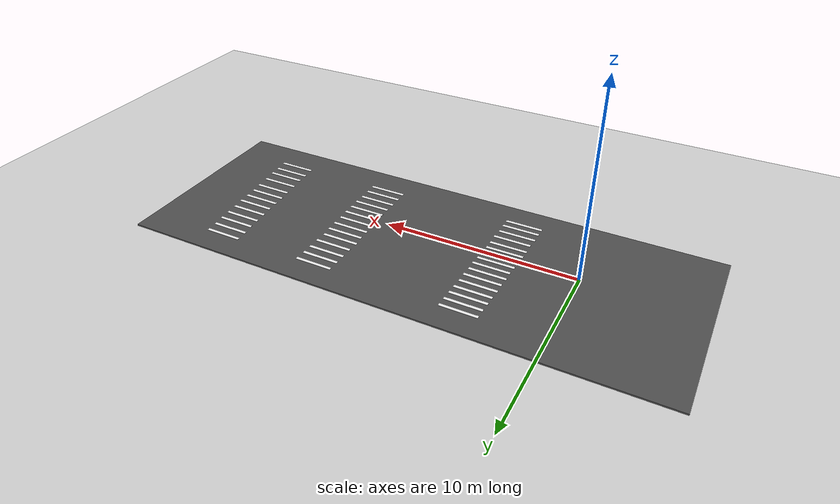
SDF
<sdf version="1.7">
 <world name="default">
  <model name="ground_plane">
   <static>1</static>
   <link name="link">
    <collision name="collision">
     <geometry><plane><normal>0 0 1</normal><size>100 100</size></plane></geometry>
     <surface><friction><ode><mu>100</mu><mu2>50</mu2></ode></friction></surface>
    </collision>
    <visual name="visual">
     <cast_shadows>0</cast_shadows>
     <geometry><plane><normal>0 0 1</normal><size>100 100</size></plane></geometry>
     <material>
      <script><uri>file://media/materials/scripts/gazebo.material</uri><name>Gazebo/Grey</name></script>
     </material>
    </visual>
   </link>
  </model>
  <light name="sun" type="directional">
   <pose>0 0 10 0 -0 0</pose>
   <diffuse>0.8 0.8 0.8 1</diffuse>
   <specular>0.2 0.2 0.2 1</specular>
   <attenuation>
    <range>1000</range>
    <constant>0.9</constant>
    <linear>0.01</linear>
    <quadratic>0.001</quadratic>
   </attenuation>
   <direction>-0.5 0.1 -0.9</direction>
   <spot><inner_angle>0</inner_angle><outer_angle>0</outer_angle><falloff>0</falloff></spot>
  </light>
  <scene><shadows>0</shadows><ambient>0.4 0.4 0.4 1</ambient><background>0.7 0.7 0.7 1</background></scene>
  <physics type="ode">
   <real_time_update_rate>1000</real_time_update_rate>
   <max_step_size>0.001</max_step_size>
   <real_time_factor>1</real_time_factor>
   <ode>
    <solver>
     <type>quick</type>
     <iters>150</iters>
     <precon_iters>0</precon_iters>
     <sor>1.4</sor>
     <use_dynamic_moi_rescaling>1</use_dynamic_moi_rescaling>
    </solver>
    <constraints>
     <cfm>1e-05</cfm>
     <erp>0.2</erp>
     <contact_max_correcting_vel>2000</contact_max_correcting_vel>
     <contact_surface_layer>0.01</contact_surface_layer>
    </constraints>
   </ode>
  </physics>
  <gravity>0 0 -9.8</gravity>
  <magnetic_field>6e-06 2.3e-05 -4.2e-05</magnetic_field>
  <atmosphere type="adiabatic"/>
  <audio><device>default</device></audio>
  <spherical_coordinates>
   <surface_model>EARTH_WGS84</surface_model>
   <latitude_deg>0</latitude_deg>
   <longitude_deg>0</longitude_deg>
   <elevation>0</elevation>
   <heading_deg>0</heading_deg>
  </spherical_coordinates>
  <model name="asphalt_plane">
   <static>1</static>
   <link name="link">
    <collision name="collision"><geometry><box><size>27.3358 10.1635 0.1</size></box></geometry></collision>
    <visual name="visual">
     <cast_shadows>0</cast_shadows>
     <geometry><box><size>27.3358 10.1635 0.1</size></box></geometry>
     <material>
      <script><name>Gazebo/DarkGrey</name><uri>file://media/materials/scripts/gazebo.material</uri></script>
     </material>
    </visual>
   </link>
   <pose>7.64385 0.79161 0 0 -0 0</pose>
  </model>
  <model name="unit_box_clone_3_clone">
   <static>1</static>
   <pose>11.6103 -2.77848 0.053193 0 -0 0.000169</pose>
   <link name="link">
    <inertial>
     <mass>1</mass>
     <inertia>
      <ixx>0.166667</ixx>
      <ixy>0</ixy>
      <ixz>0</ixz>
      <iyy>0.166667</iyy>
      <iyz>0</iyz>
      <izz>0.166667</izz>
     </inertia>
    </inertial>
    <collision name="collision"><geometry><box><size>1.90796 0.165074 0.006387</size></box></geometry></collision>
    <visual name="visual">
     <geometry><box><size>1.90796 0.165074 0.006387</size></box></geometry>
     <material>
      <script><name>Gazebo/White</name><uri>file://media/materials/scripts/gazebo.material</uri></script>
     </material>
    </visual>
   </link>
  </model>
  <model name="unit_box_clone_3_clone_0">
   <static>1</static>
   <pose>11.5996 -2.2243 0.053193 0 -0 0.000169</pose>
   <link name="link">
    <inertial>
     <mass>1</mass>
     <inertia>
      <ixx>0.166667</ixx>
      <ixy>0</ixy>
      <ixz>0</ixz>
      <iyy>0.166667</iyy>
      <iyz>0</iyz>
      <izz>0.166667</izz>
     </inertia>
    </inertial>
    <collision name="collision"><geometry><box><size>1.90796 0.165074 0.006387</size></box></geometry></collision>
    <visual name="visual">
     <geometry><box><size>1.90796 0.165074 0.006387</size></box></geometry>
     <material>
      <script><name>Gazebo/White</name><uri>file://media/materials/scripts/gazebo.material</uri></script>
     </material>
    </visual>
   </link>
  </model>
  <model name="unit_box_clone_3_clone_1">
   <static>1</static>
   <pose>11.5931 -1.6331 0.053193 0 -0 0.000169</pose>
   <link name="link">
    <inertial>
     <mass>1</mass>
     <inertia>
      <ixx>0.166667</ixx>
      <ixy>0</ixy>
      <ixz>0</ixz>
      <iyy>0.166667</iyy>
      <iyz>0</iyz>
      <izz>0.166667</izz>
     </inertia>
    </inertial>
    <collision name="collision"><geometry><box><size>1.90796 0.165074 0.006387</size></box></geometry></collision>
    <visual name="visual">
     <geometry><box><size>1.90796 0.165074 0.006387</size></box></geometry>
     <material>
      <script><name>Gazebo/White</name><uri>file://media/materials/scripts/gazebo.material</uri></script>
     </material>
    </visual>
   </link>
  </model>
  <model name="unit_box_clone_3_clone_2">
   <static>1</static>
   <pose>11.6174 -1.07884 0.053193 0 -0 0.000169</pose>
   <link name="link">
    <inertial>
     <mass>1</mass>
     <inertia>
      <ixx>0.166667</ixx>
      <ixy>0</ixy>
      <ixz>0</ixz>
      <iyy>0.166667</iyy>
      <iyz>0</iyz>
      <izz>0.166667</izz>
     </inertia>
    </inertial>
    <collision name="collision"><geometry><box><size>1.90796 0.165074 0.006387</size></box></geometry></collision>
    <visual name="visual">
     <geometry><box><size>1.90796 0.165074 0.006387</size></box></geometry>
     <material>
      <script><name>Gazebo/White</name><uri>file://media/materials/scripts/gazebo.material</uri></script>
     </material>
    </visual>
   </link>
  </model>
  <model name="unit_box_clone_3_clone_3">
   <static>1</static>
   <pose>11.605 -0.530038 0.053193 0 -0 0.000169</pose>
   <link name="link">
    <inertial>
     <mass>1</mass>
     <inertia>
      <ixx>0.166667</ixx>
      <ixy>0</ixy>
      <ixz>0</ixz>
      <iyy>0.166667</iyy>
      <iyz>0</iyz>
      <izz>0.166667</izz>
     </inertia>
    </inertial>
    <collision name="collision"><geometry><box><size>1.90796 0.165074 0.006387</size></box></geometry></collision>
    <visual name="visual">
     <geometry><box><size>1.90796 0.165074 0.006387</size></box></geometry>
     <material>
      <script><name>Gazebo/White</name><uri>file://media/materials/scripts/gazebo.material</uri></script>
     </material>
    </visual>
   </link>
  </model>
  <model name="unit_box_clone_3_clone_4">
   <static>1</static>
   <pose>11.6043 0.019375 0.053193 0 -0 0.000169</pose>
   <link name="link">
    <inertial>
     <mass>1</mass>
     <inertia>
      <ixx>0.166667</ixx>
      <ixy>0</ixy>
      <ixz>0</ixz>
      <iyy>0.166667</iyy>
      <iyz>0</iyz>
      <izz>0.166667</izz>
     </inertia>
    </inertial>
    <collision name="collision"><geometry><box><size>1.90796 0.165074 0.006387</size></box></geometry></collision>
    <visual name="visual">
     <geometry><box><size>1.90796 0.165074 0.006387</size></box></geometry>
     <material>
      <script><name>Gazebo/White</name><uri>file://media/materials/scripts/gazebo.material</uri></script>
     </material>
    </visual>
   </link>
  </model>
  <model name="unit_box_clone_3_clone_4_clone">
   <static>1</static>
   <pose>11.5465 0.589654 0.053193 0 -0 0.000169</pose>
   <link name="link">
    <inertial>
     <mass>1</mass>
     <inertia>
      <ixx>0.166667</ixx>
      <ixy>0</ixy>
      <ixz>0</ixz>
      <iyy>0.166667</iyy>
      <iyz>0</iyz>
      <izz>0.166667</izz>
     </inertia>
    </inertial>
    <collision name="collision"><geometry><box><size>1.90796 0.165074 0.006387</size></box></geometry></collision>
    <visual name="visual">
     <geometry><box><size>1.90796 0.165074 0.006387</size></box></geometry>
     <material>
      <script><name>Gazebo/White</name><uri>file://media/materials/scripts/gazebo.material</uri></script>
     </material>
    </visual>
   </link>
  </model>
  <model name="unit_box_clone_3_clone_4_clone_0">
   <static>1</static>
   <pose>11.5365 1.16834 0.053193 0 -0 0.000169</pose>
   <link name="link">
    <inertial>
     <mass>1</mass>
     <inertia>
      <ixx>0.166667</ixx>
      <ixy>0</ixy>
      <ixz>0</ixz>
      <iyy>0.166667</iyy>
      <iyz>0</iyz>
      <izz>0.166667</izz>
     </inertia>
    </inertial>
    <collision name="collision"><geometry><box><size>1.90796 0.165074 0.006387</size></box></geometry></collision>
    <visual name="visual">
     <geometry><box><size>1.90796 0.165074 0.006387</size></box></geometry>
     <material>
      <script><name>Gazebo/White</name><uri>file://media/materials/scripts/gazebo.material</uri></script>
     </material>
    </visual>
   </link>
  </model>
  <model name="unit_box_clone_3_clone_4_clone_1">
   <static>1</static>
   <pose>11.5239 1.72543 0.053193 0 -0 0.000169</pose>
   <link name="link">
    <inertial>
     <mass>1</mass>
     <inertia>
      <ixx>0.166667</ixx>
      <ixy>0</ixy>
      <ixz>0</ixz>
      <iyy>0.166667</iyy>
      <iyz>0</iyz>
      <izz>0.166667</izz>
     </inertia>
    </inertial>
    <collision name="collision"><geometry><box><size>1.90796 0.165074 0.006387</size></box></geometry></collision>
    <visual name="visual">
     <geometry><box><size>1.90796 0.165074 0.006387</size></box></geometry>
     <material>
      <script><name>Gazebo/White</name><uri>file://media/materials/scripts/gazebo.material</uri></script>
     </material>
    </visual>
   </link>
  </model>
  <model name="unit_box_clone_3_clone_4_clone_2">
   <static>1</static>
   <pose>11.4489 2.26766 0.053193 0 -0 0.000169</pose>
   <link name="link">
    <inertial>
     <mass>1</mass>
     <inertia>
      <ixx>0.166667</ixx>
      <ixy>0</ixy>
      <ixz>0</ixz>
      <iyy>0.166667</iyy>
      <iyz>0</iyz>
      <izz>0.166667</izz>
     </inertia>
    </inertial>
    <collision name="collision"><geometry><box><size>1.90796 0.165074 0.006387</size></box></geometry></collision>
    <visual name="visual">
     <geometry><box><size>1.90796 0.165074 0.006387</size></box></geometry>
     <material>
      <script><name>Gazebo/White</name><uri>file://media/materials/scripts/gazebo.material</uri></script>
     </material>
    </visual>
   </link>
  </model>
  <model name="unit_box_clone_3_clone_4_clone_3">
   <static>1</static>
   <pose>11.4869 2.84722 0.053193 0 -0 0.000169</pose>
   <link name="link">
    <inertial>
     <mass>1</mass>
     <inertia>
      <ixx>0.166667</ixx>
      <ixy>0</ixy>
      <ixz>0</ixz>
      <iyy>0.166667</iyy>
      <iyz>0</iyz>
      <izz>0.166667</izz>
     </inertia>
    </inertial>
    <collision name="collision"><geometry><box><size>1.90796 0.165074 0.006387</size></box></geometry></collision>
    <visual name="visual">
     <geometry><box><size>1.90796 0.165074 0.006387</size></box></geometry>
     <material>
      <script><name>Gazebo/White</name><uri>file://media/materials/scripts/gazebo.material</uri></script>
     </material>
    </visual>
   </link>
  </model>
  <model name="unit_box_clone_3_clone_4_clone_4">
   <static>1</static>
   <pose>11.4888 3.4333 0.053193 0 -0 0.000169</pose>
   <link name="link">
    <inertial>
     <mass>1</mass>
     <inertia>
      <ixx>0.166667</ixx>
      <ixy>0</ixy>
      <ixz>0</ixz>
      <iyy>0.166667</iyy>
      <iyz>0</iyz>
      <izz>0.166667</izz>
     </inertia>
    </inertial>
    <collision name="collision"><geometry><box><size>1.90796 0.165074 0.006387</size></box></geometry></collision>
    <visual name="visual">
     <geometry><box><size>1.90796 0.165074 0.006387</size></box></geometry>
     <material>
      <script><name>Gazebo/White</name><uri>file://media/materials/scripts/gazebo.material</uri></script>
     </material>
    </visual>
   </link>
  </model>
  <model name="unit_box_clone_3_clone_4_clone_5">
   <static>1</static>
   <pose>11.4849 3.97323 0.053193 0 -0 0.000169</pose>
   <link name="link">
    <inertial>
     <mass>1</mass>
     <inertia>
      <ixx>0.166667</ixx>
      <ixy>0</ixy>
      <ixz>0</ixz>
      <iyy>0.166667</iyy>
      <iyz>0</iyz>
      <izz>0.166667</izz>
     </inertia>
    </inertial>
    <collision name="collision"><geometry><box><size>1.90796 0.165074 0.006387</size></box></geometry></collision>
    <visual name="visual">
     <geometry><box><size>1.90796 0.165074 0.006387</size></box></geometry>
     <material>
      <script><name>Gazebo/White</name><uri>file://media/materials/scripts/gazebo.material</uri></script>
     </material>
    </visual>
   </link>
  </model>
  <model name="unit_box_clone_3_clone_4_clone_6">
   <static>1</static>
   <pose>11.5065 4.52435 0.053193 0 -0 0.000169</pose>
   <link name="link">
    <inertial>
     <mass>1</mass>
     <inertia>
      <ixx>0.166667</ixx>
      <ixy>0</ixy>
      <ixz>0</ixz>
      <iyy>0.166667</iyy>
      <iyz>0</iyz>
      <izz>0.166667</izz>
     </inertia>
    </inertial>
    <collision name="collision"><geometry><box><size>1.90796 0.165074 0.006387</size></box></geometry></collision>
    <visual name="visual">
     <geometry><box><size>1.90796 0.165074 0.006387</size></box></geometry>
     <material>
      <script><name>Gazebo/White</name><uri>file://media/materials/scripts/gazebo.material</uri></script>
     </material>
    </visual>
   </link>
  </model>
  <model name="unit_box_clone_3_clone_4_clone_7">
   <static>1</static>
   <pose>4 4.498 0.053193 0 -0 0.000169</pose>
   <link name="link">
    <inertial>
     <mass>1</mass>
     <inertia>
      <ixx>0.166667</ixx>
      <ixy>0</ixy>
      <ixz>0</ixz>
      <iyy>0.166667</iyy>
      <iyz>0</iyz>
      <izz>0.166667</izz>
     </inertia>
    </inertial>
    <collision name="collision"><geometry><box><size>1.90796 0.165074 0.006387</size></box></geometry></collision>
    <visual name="visual">
     <geometry><box><size>1.90796 0.165074 0.006387</size></box></geometry>
     <material>
      <script><name>Gazebo/White</name><uri>file://media/materials/scripts/gazebo.material</uri></script>
     </material>
    </visual>
   </link>
  </model>
  <model name="unit_box_clone_3_clone_4_clone_8">
   <static>1</static>
   <pose>3.99733 4.0038 0.053193 0 -0 0.000169</pose>
   <link name="link">
    <inertial>
     <mass>1</mass>
     <inertia>
      <ixx>0.166667</ixx>
      <ixy>0</ixy>
      <ixz>0</ixz>
      <iyy>0.166667</iyy>
      <iyz>0</iyz>
      <izz>0.166667</izz>
     </inertia>
    </inertial>
    <collision name="collision"><geometry><box><size>1.90796 0.165074 0.006387</size></box></geometry></collision>
    <visual name="visual">
     <geometry><box><size>1.90796 0.165074 0.006387</size></box></geometry>
     <material>
      <script><name>Gazebo/White</name><uri>file://media/materials/scripts/gazebo.material</uri></script>
     </material>
    </visual>
   </link>
  </model>
  <model name="unit_box_clone_3_clone_4_clone_9">
   <static>1</static>
   <pose>3.97062 3.50716 0.053193 0 -0 0.000169</pose>
   <link name="link">
    <inertial>
     <mass>1</mass>
     <inertia>
      <ixx>0.166667</ixx>
      <ixy>0</ixy>
      <ixz>0</ixz>
      <iyy>0.166667</iyy>
      <iyz>0</iyz>
      <izz>0.166667</izz>
     </inertia>
    </inertial>
    <collision name="collision"><geometry><box><size>1.90796 0.165074 0.006387</size></box></geometry></collision>
    <visual name="visual">
     <geometry><box><size>1.90796 0.165074 0.006387</size></box></geometry>
     <material>
      <script><name>Gazebo/White</name><uri>file://media/materials/scripts/gazebo.material</uri></script>
     </material>
    </visual>
   </link>
  </model>
  <model name="unit_box_clone_3_clone_4_clone_10">
   <static>1</static>
   <pose>3.9586 3.03451 0.053193 0 -0 0.000169</pose>
   <link name="link">
    <inertial>
     <mass>1</mass>
     <inertia>
      <ixx>0.166667</ixx>
      <ixy>0</ixy>
      <ixz>0</ixz>
      <iyy>0.166667</iyy>
      <iyz>0</iyz>
      <izz>0.166667</izz>
     </inertia>
    </inertial>
    <collision name="collision"><geometry><box><size>1.90796 0.165074 0.006387</size></box></geometry></collision>
    <visual name="visual">
     <geometry><box><size>1.90796 0.165074 0.006387</size></box></geometry>
     <material>
      <script><name>Gazebo/White</name><uri>file://media/materials/scripts/gazebo.material</uri></script>
     </material>
    </visual>
   </link>
  </model>
  <model name="unit_box_clone_3_clone_4_clone_11">
   <static>1</static>
   <pose>3.93079 2.52904 0.053193 0 -0 0.000169</pose>
   <link name="link">
    <inertial>
     <mass>1</mass>
     <inertia>
      <ixx>0.166667</ixx>
      <ixy>0</ixy>
      <ixz>0</ixz>
      <iyy>0.166667</iyy>
      <iyz>0</iyz>
      <izz>0.166667</izz>
     </inertia>
    </inertial>
    <collision name="collision"><geometry><box><size>1.90796 0.165074 0.006387</size></box></geometry></collision>
    <visual name="visual">
     <geometry><box><size>1.90796 0.165074 0.006387</size></box></geometry>
     <material>
      <script><name>Gazebo/White</name><uri>file://media/materials/scripts/gazebo.material</uri></script>
     </material>
    </visual>
   </link>
  </model>
  <model name="unit_box_clone_3_clone_4_clone_12">
   <static>1</static>
   <pose>3.93896 2.02106 0.053193 0 -0 0.000169</pose>
   <link name="link">
    <inertial>
     <mass>1</mass>
     <inertia>
      <ixx>0.166667</ixx>
      <ixy>0</ixy>
      <ixz>0</ixz>
      <iyy>0.166667</iyy>
      <iyz>0</iyz>
      <izz>0.166667</izz>
     </inertia>
    </inertial>
    <collision name="collision"><geometry><box><size>1.90796 0.165074 0.006387</size></box></geometry></collision>
    <visual name="visual">
     <geometry><box><size>1.90796 0.165074 0.006387</size></box></geometry>
     <material>
      <script><name>Gazebo/White</name><uri>file://media/materials/scripts/gazebo.material</uri></script>
     </material>
    </visual>
   </link>
  </model>
  <model name="unit_box_clone_3_clone_4_clone_13">
   <static>1</static>
   <pose>3.89977 1.52039 0.053193 0 -0 0.000169</pose>
   <link name="link">
    <inertial>
     <mass>1</mass>
     <inertia>
      <ixx>0.166667</ixx>
      <ixy>0</ixy>
      <ixz>0</ixz>
      <iyy>0.166667</iyy>
      <iyz>0</iyz>
      <izz>0.166667</izz>
     </inertia>
    </inertial>
    <collision name="collision"><geometry><box><size>1.90796 0.165074 0.006387</size></box></geometry></collision>
    <visual name="visual">
     <geometry><box><size>1.90796 0.165074 0.006387</size></box></geometry>
     <material>
      <script><name>Gazebo/White</name><uri>file://media/materials/scripts/gazebo.material</uri></script>
     </material>
    </visual>
   </link>
  </model>
  <model name="unit_box_clone_3_clone_4_clone_14">
   <static>1</static>
   <pose>3.92039 1.02634 0.053193 0 -0 0.000169</pose>
   <link name="link">
    <inertial>
     <mass>1</mass>
     <inertia>
      <ixx>0.166667</ixx>
      <ixy>0</ixy>
      <ixz>0</ixz>
      <iyy>0.166667</iyy>
      <iyz>0</iyz>
      <izz>0.166667</izz>
     </inertia>
    </inertial>
    <collision name="collision"><geometry><box><size>1.90796 0.165074 0.006387</size></box></geometry></collision>
    <visual name="visual">
     <geometry><box><size>1.90796 0.165074 0.006387</size></box></geometry>
     <material>
      <script><name>Gazebo/White</name><uri>file://media/materials/scripts/gazebo.material</uri></script>
     </material>
    </visual>
   </link>
  </model>
  <model name="unit_box_clone_3_clone_4_clone_15">
   <static>1</static>
   <pose>3.88356 0.552586 0.053193 0 -0 0.000169</pose>
   <link name="link">
    <inertial>
     <mass>1</mass>
     <inertia>
      <ixx>0.166667</ixx>
      <ixy>0</ixy>
      <ixz>0</ixz>
      <iyy>0.166667</iyy>
      <iyz>0</iyz>
      <izz>0.166667</izz>
     </inertia>
    </inertial>
    <collision name="collision"><geometry><box><size>1.90796 0.165074 0.006387</size></box></geometry></collision>
    <visual name="visual">
     <geometry><box><size>1.90796 0.165074 0.006387</size></box></geometry>
     <material>
      <script><name>Gazebo/White</name><uri>file://media/materials/scripts/gazebo.material</uri></script>
     </material>
    </visual>
   </link>
  </model>
  <model name="unit_box_clone_3_clone_4_clone_16">
   <static>1</static>
   <pose>3.8496 0.103853 0.053193 0 -0 0.000169</pose>
   <link name="link">
    <inertial>
     <mass>1</mass>
     <inertia>
      <ixx>0.166667</ixx>
      <ixy>0</ixy>
      <ixz>0</ixz>
      <iyy>0.166667</iyy>
      <iyz>0</iyz>
      <izz>0.166667</izz>
     </inertia>
    </inertial>
    <collision name="collision"><geometry><box><size>1.90796 0.165074 0.006387</size></box></geometry></collision>
    <visual name="visual">
     <geometry><box><size>1.90796 0.165074 0.006387</size></box></geometry>
     <material>
      <script><name>Gazebo/White</name><uri>file://media/materials/scripts/gazebo.material</uri></script>
     </material>
    </visual>
   </link>
  </model>
  <model name="unit_box_clone_3_clone_4_clone_17">
   <static>1</static>
   <pose>3.83179 -0.416608 0.053193 0 -0 0.000169</pose>
   <link name="link">
    <inertial>
     <mass>1</mass>
     <inertia>
      <ixx>0.166667</ixx>
      <ixy>0</ixy>
      <ixz>0</ixz>
      <iyy>0.166667</iyy>
      <iyz>0</iyz>
      <izz>0.166667</izz>
     </inertia>
    </inertial>
    <collision name="collision"><geometry><box><size>1.90796 0.165074 0.006387</size></box></geometry></collision>
    <visual name="visual">
     <geometry><box><size>1.90796 0.165074 0.006387</size></box></geometry>
     <material>
      <script><name>Gazebo/White</name><uri>file://media/materials/scripts/gazebo.material</uri></script>
     </material>
    </visual>
   </link>
  </model>
  <model name="unit_box_clone_3_clone_4_clone_18">
   <static>1</static>
   <pose>3.82007 -0.876906 0.053193 0 -0 0.000169</pose>
   <link name="link">
    <inertial>
     <mass>1</mass>
     <inertia>
      <ixx>0.166667</ixx>
      <ixy>0</ixy>
      <ixz>0</ixz>
      <iyy>0.166667</iyy>
      <iyz>0</iyz>
      <izz>0.166667</izz>
     </inertia>
    </inertial>
    <collision name="collision"><geometry><box><size>1.90796 0.165074 0.006387</size></box></geometry></collision>
    <visual name="visual">
     <geometry><box><size>1.90796 0.165074 0.006387</size></box></geometry>
     <material>
      <script><name>Gazebo/White</name><uri>file://media/materials/scripts/gazebo.material</uri></script>
     </material>
    </visual>
   </link>
  </model>
  <model name="unit_box_clone_3_clone_4_clone_19">
   <static>1</static>
   <pose>3.84406 -1.44599 0.053193 0 -0 0.000169</pose>
   <link name="link">
    <inertial>
     <mass>1</mass>
     <inertia>
      <ixx>0.166667</ixx>
      <ixy>0</ixy>
      <ixz>0</ixz>
      <iyy>0.166667</iyy>
      <iyz>0</iyz>
      <izz>0.166667</izz>
     </inertia>
    </inertial>
    <collision name="collision"><geometry><box><size>1.90796 0.165074 0.006387</size></box></geometry></collision>
    <visual name="visual">
     <geometry><box><size>1.90796 0.165074 0.006387</size></box></geometry>
     <material>
      <script><name>Gazebo/White</name><uri>file://media/materials/scripts/gazebo.material</uri></script>
     </material>
    </visual>
   </link>
  </model>
  <model name="unit_box_clone_3_clone_4_clone_20">
   <static>1</static>
   <pose>3.78889 -1.98008 0.053193 0 -0 0.000169</pose>
   <link name="link">
    <inertial>
     <mass>1</mass>
     <inertia>
      <ixx>0.166667</ixx>
      <ixy>0</ixy>
      <ixz>0</ixz>
      <iyy>0.166667</iyy>
      <iyz>0</iyz>
      <izz>0.166667</izz>
     </inertia>
    </inertial>
    <collision name="collision"><geometry><box><size>1.90796 0.165074 0.006387</size></box></geometry></collision>
    <visual name="visual">
     <geometry><box><size>1.90796 0.165074 0.006387</size></box></geometry>
     <material>
      <script><name>Gazebo/White</name><uri>file://media/materials/scripts/gazebo.material</uri></script>
     </material>
    </visual>
   </link>
  </model>
  <model name="unit_box_clone_3_clone_4_clone_21">
   <static>1</static>
   <pose>3.80384 -2.52052 0.053193 0 -0 0.000169</pose>
   <link name="link">
    <inertial>
     <mass>1</mass>
     <inertia>
      <ixx>0.166667</ixx>
      <ixy>0</ixy>
      <ixz>0</ixz>
      <iyy>0.166667</iyy>
      <iyz>0</iyz>
      <izz>0.166667</izz>
     </inertia>
    </inertial>
    <collision name="collision"><geometry><box><size>1.90796 0.165074 0.006387</size></box></geometry></collision>
    <visual name="visual">
     <geometry><box><size>1.90796 0.165074 0.006387</size></box></geometry>
     <material>
      <script><name>Gazebo/White</name><uri>file://media/materials/scripts/gazebo.material</uri></script>
     </material>
    </visual>
   </link>
  </model>
  <model name="unit_box_clone_3_clone_4_clone_22">
   <static>1</static>
   <pose>3.8038 -2.97562 0.053193 0 -0 0.000169</pose>
   <link name="link">
    <inertial>
     <mass>1</mass>
     <inertia>
      <ixx>0.166667</ixx>
      <ixy>0</ixy>
      <ixz>0</ixz>
      <iyy>0.166667</iyy>
      <iyz>0</iyz>
      <izz>0.166667</izz>
     </inertia>
    </inertial>
    <collision name="collision"><geometry><box><size>1.90796 0.165074 0.006387</size></box></geometry></collision>
    <visual name="visual">
     <geometry><box><size>1.90796 0.165074 0.006387</size></box></geometry>
     <material>
      <script><name>Gazebo/White</name><uri>file://media/materials/scripts/gazebo.material</uri></script>
     </material>
    </visual>
   </link>
  </model>
  <model name="unit_box_clone_3_clone_4_clone_23">
   <static>1</static>
   <pose>16.8665 4.55563 0.053193 0 -0 0.000169</pose>
   <link name="link">
    <inertial>
     <mass>1</mass>
     <inertia>
      <ixx>0.166667</ixx>
      <ixy>0</ixy>
      <ixz>0</ixz>
      <iyy>0.166667</iyy>
      <iyz>0</iyz>
      <izz>0.166667</izz>
     </inertia>
    </inertial>
    <collision name="collision"><geometry><box><size>1.90796 0.165074 0.006387</size></box></geometry></collision>
    <visual name="visual">
     <geometry><box><size>1.90796 0.165074 0.006387</size></box></geometry>
     <material>
      <script><name>Gazebo/White</name><uri>file://media/materials/scripts/gazebo.material</uri></script>
     </material>
    </visual>
   </link>
  </model>
  <model name="unit_box_clone_3_clone_4_clone_24">
   <static>1</static>
   <pose>16.8933 3.98392 0.053193 0 -0 0.000169</pose>
   <link name="link">
    <inertial>
     <mass>1</mass>
     <inertia>
      <ixx>0.166667</ixx>
      <ixy>0</ixy>
      <ixz>0</ixz>
      <iyy>0.166667</iyy>
      <iyz>0</iyz>
      <izz>0.166667</izz>
     </inertia>
    </inertial>
    <collision name="collision"><geometry><box><size>1.90796 0.165074 0.006387</size></box></geometry></collision>
    <visual name="visual">
     <geometry><box><size>1.90796 0.165074 0.006387</size></box></geometry>
     <material>
      <script><name>Gazebo/White</name><uri>file://media/materials/scripts/gazebo.material</uri></script>
     </material>
    </visual>
   </link>
  </model>
  <model name="unit_box_clone_3_clone_4_clone_25">
   <static>1</static>
   <pose>16.9916 3.40601 0.053193 0 -0 0.000169</pose>
   <link name="link">
    <inertial>
     <mass>1</mass>
     <inertia>
      <ixx>0.166667</ixx>
      <ixy>0</ixy>
      <ixz>0</ixz>
      <iyy>0.166667</iyy>
      <iyz>0</iyz>
      <izz>0.166667</izz>
     </inertia>
    </inertial>
    <collision name="collision"><geometry><box><size>1.90796 0.165074 0.006387</size></box></geometry></collision>
    <visual name="visual">
     <geometry><box><size>1.90796 0.165074 0.006387</size></box></geometry>
     <material>
      <script><name>Gazebo/White</name><uri>file://media/materials/scripts/gazebo.material</uri></script>
     </material>
    </visual>
   </link>
  </model>
  <model name="unit_box_clone_3_clone_4_clone_26">
   <static>1</static>
   <pose>17.0297 2.83727 0.053193 0 -0 0.000169</pose>
   <link name="link">
    <inertial>
     <mass>1</mass>
     <inertia>
      <ixx>0.166667</ixx>
      <ixy>0</ixy>
      <ixz>0</ixz>
      <iyy>0.166667</iyy>
      <iyz>0</iyz>
      <izz>0.166667</izz>
     </inertia>
    </inertial>
    <collision name="collision"><geometry><box><size>1.90796 0.165074 0.006387</size></box></geometry></collision>
    <visual name="visual">
     <geometry><box><size>1.90796 0.165074 0.006387</size></box></geometry>
     <material>
      <script><name>Gazebo/White</name><uri>file://media/materials/scripts/gazebo.material</uri></script>
     </material>
    </visual>
   </link>
  </model>
  <model name="unit_box_clone_3_clone_4_clone_27">
   <static>1</static>
   <pose>17.0745 2.23337 0.053193 0 -0 0.000169</pose>
   <link name="link">
    <inertial>
     <mass>1</mass>
     <inertia>
      <ixx>0.166667</ixx>
      <ixy>0</ixy>
      <ixz>0</ixz>
      <iyy>0.166667</iyy>
      <iyz>0</iyz>
      <izz>0.166667</izz>
     </inertia>
    </inertial>
    <collision name="collision"><geometry><box><size>1.90796 0.165074 0.006387</size></box></geometry></collision>
    <visual name="visual">
     <geometry><box><size>1.90796 0.165074 0.006387</size></box></geometry>
     <material>
      <script><name>Gazebo/White</name><uri>file://media/materials/scripts/gazebo.material</uri></script>
     </material>
    </visual>
   </link>
  </model>
  <model name="unit_box_clone_3_clone_4_clone_28">
   <static>1</static>
   <pose>17.1447 1.64083 0.053193 0 -0 0.000169</pose>
   <link name="link">
    <inertial>
     <mass>1</mass>
     <inertia>
      <ixx>0.166667</ixx>
      <ixy>0</ixy>
      <ixz>0</ixz>
      <iyy>0.166667</iyy>
      <iyz>0</iyz>
      <izz>0.166667</izz>
     </inertia>
    </inertial>
    <collision name="collision"><geometry><box><size>1.90796 0.165074 0.006387</size></box></geometry></collision>
    <visual name="visual">
     <geometry><box><size>1.90796 0.165074 0.006387</size></box></geometry>
     <material>
      <script><name>Gazebo/White</name><uri>file://media/materials/scripts/gazebo.material</uri></script>
     </material>
    </visual>
   </link>
  </model>
  <model name="unit_box_clone_3_clone_4_clone_29">
   <static>1</static>
   <pose>17.1808 1.06672 0.053193 0 -0 0.000169</pose>
   <link name="link">
    <inertial>
     <mass>1</mass>
     <inertia>
      <ixx>0.166667</ixx>
      <ixy>0</ixy>
      <ixz>0</ixz>
      <iyy>0.166667</iyy>
      <iyz>0</iyz>
      <izz>0.166667</izz>
     </inertia>
    </inertial>
    <collision name="collision"><geometry><box><size>1.90796 0.165074 0.006387</size></box></geometry></collision>
    <visual name="visual">
     <geometry><box><size>1.90796 0.165074 0.006387</size></box></geometry>
     <material>
      <script><name>Gazebo/White</name><uri>file://media/materials/scripts/gazebo.material</uri></script>
     </material>
    </visual>
   </link>
  </model>
  <model name="unit_box_clone_3_clone_4_clone_30">
   <static>1</static>
   <pose>17.2045 0.496159 0.053193 0 -0 0.000169</pose>
   <link name="link">
    <inertial>
     <mass>1</mass>
     <inertia>
      <ixx>0.166667</ixx>
      <ixy>0</ixy>
      <ixz>0</ixz>
      <iyy>0.166667</iyy>
      <iyz>0</iyz>
      <izz>0.166667</izz>
     </inertia>
    </inertial>
    <collision name="collision"><geometry><box><size>1.90796 0.165074 0.006387</size></box></geometry></collision>
    <visual name="visual">
     <geometry><box><size>1.90796 0.165074 0.006387</size></box></geometry>
     <material>
      <script><name>Gazebo/White</name><uri>file://media/materials/scripts/gazebo.material</uri></script>
     </material>
    </visual>
   </link>
  </model>
  <model name="unit_box_clone_3_clone_4_clone_31">
   <static>1</static>
   <pose>17.2859 -0.091052 0.053193 0 -0 0.000169</pose>
   <link name="link">
    <inertial>
     <mass>1</mass>
     <inertia>
      <ixx>0.166667</ixx>
      <ixy>0</ixy>
      <ixz>0</ixz>
      <iyy>0.166667</iyy>
      <iyz>0</iyz>
      <izz>0.166667</izz>
     </inertia>
    </inertial>
    <collision name="collision"><geometry><box><size>1.90796 0.165074 0.006387</size></box></geometry></collision>
    <visual name="visual">
     <geometry><box><size>1.90796 0.165074 0.006387</size></box></geometry>
     <material>
      <script><name>Gazebo/White</name><uri>file://media/materials/scripts/gazebo.material</uri></script>
     </material>
    </visual>
   </link>
  </model>
  <model name="unit_box_clone_3_clone_4_clone_32">
   <static>1</static>
   <pose>17.3357 -0.803853 0.053193 0 -0 0.000169</pose>
   <link name="link">
    <inertial>
     <mass>1</mass>
     <inertia>
      <ixx>0.166667</ixx>
      <ixy>0</ixy>
      <ixz>0</ixz>
      <iyy>0.166667</iyy>
      <iyz>0</iyz>
      <izz>0.166667</izz>
     </inertia>
    </inertial>
    <collision name="collision"><geometry><box><size>1.90796 0.165074 0.006387</size></box></geometry></collision>
    <visual name="visual">
     <geometry><box><size>1.90796 0.165074 0.006387</size></box></geometry>
     <material>
      <script><name>Gazebo/White</name><uri>file://media/materials/scripts/gazebo.material</uri></script>
     </material>
    </visual>
   </link>
  </model>
  <model name="unit_box_clone_3_clone_4_clone_33">
   <static>1</static>
   <pose>17.4254 -1.48235 0.053193 0 -0 0.000169</pose>
   <link name="link">
    <inertial>
     <mass>1</mass>
     <inertia>
      <ixx>0.166667</ixx>
      <ixy>0</ixy>
      <ixz>0</ixz>
      <iyy>0.166667</iyy>
      <iyz>0</iyz>
      <izz>0.166667</izz>
     </inertia>
    </inertial>
    <collision name="collision"><geometry><box><size>1.90796 0.165074 0.006387</size></box></geometry></collision>
    <visual name="visual">
     <geometry><box><size>1.90796 0.165074 0.006387</size></box></geometry>
     <material>
      <script><name>Gazebo/White</name><uri>file://media/materials/scripts/gazebo.material</uri></script>
     </material>
    </visual>
   </link>
  </model>
  <model name="unit_box_clone_3_clone_4_clone_34">
   <static>1</static>
   <pose>17.4378 -2.04198 0.053193 0 -0 0.000169</pose>
   <link name="link">
    <inertial>
     <mass>1</mass>
     <inertia>
      <ixx>0.166667</ixx>
      <ixy>0</ixy>
      <ixz>0</ixz>
      <iyy>0.166667</iyy>
      <iyz>0</iyz>
      <izz>0.166667</izz>
     </inertia>
    </inertial>
    <collision name="collision"><geometry><box><size>1.90796 0.165074 0.006387</size></box></geometry></collision>
    <visual name="visual">
     <geometry><box><size>1.90796 0.165074 0.006387</size></box></geometry>
     <material>
      <script><name>Gazebo/White</name><uri>file://media/materials/scripts/gazebo.material</uri></script>
     </material>
    </visual>
   </link>
  </model>
  <model name="unit_box_clone_3_clone_4_clone_35">
   <static>1</static>
   <pose>17.507 -2.68902 0.053193 0 -0 0.000169</pose>
   <link name="link">
    <inertial>
     <mass>1</mass>
     <inertia>
      <ixx>0.166667</ixx>
      <ixy>0</ixy>
      <ixz>0</ixz>
      <iyy>0.166667</iyy>
      <iyz>0</iyz>
      <izz>0.166667</izz>
     </inertia>
    </inertial>
    <collision name="collision"><geometry><box><size>1.90796 0.165074 0.006387</size></box></geometry></collision>
    <visual name="visual">
     <geometry><box><size>1.90796 0.165074 0.006387</size></box></geometry>
     <material>
      <script><name>Gazebo/White</name><uri>file://media/materials/scripts/gazebo.material</uri></script>
     </material>
    </visual>
   </link>
  </model>
 </world>
</sdf>
